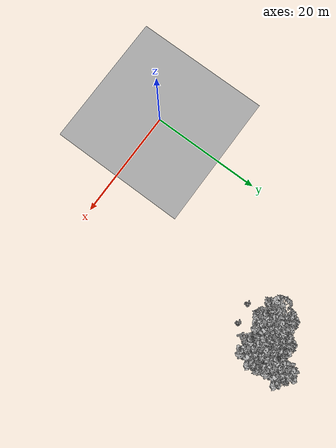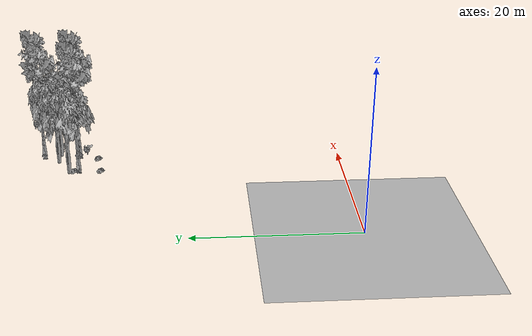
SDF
<sdf version="1.7">
 <world name="default">
  <model name="ground_plane">
   <static>1</static>
   <link name="link">
    <collision name="collision">
     <pose>-50 0 0 0 -0 0</pose>
     <geometry><plane><normal>0 0 1</normal><size>80 80</size></plane></geometry>
     <surface><contact><ode><min_depth>0.01</min_depth><max_vel>0</max_vel></ode></contact></surface>
    </collision>
    <visual name="grass">
     <cast_shadows>0</cast_shadows>
     <geometry>
      <mesh>
       <scale>0.46714285714285714 0.46714285714285714 0.1</scale>
       <uri>file://grass_plane/meshes/grass_plane.dae</uri>
      </mesh>
     </geometry>
    </visual>
   </link>
  </model>
  <model name="Tree 107">
   <static>1</static>
   <pose>19.491694746890296 36.49548050510151 0 1.57079 -0 0</pose>
   <link name="link">
    <collision name="collision">
     <geometry><mesh><scale>3.5 5 3.5</scale><uri>model://tree_2/meshes/tree_2.obj</uri></mesh></geometry>
    </collision>
    <visual name="visual">
     <geometry><mesh><scale>3.5 5 3.5</scale><uri>model://tree_2/meshes/tree_2.obj</uri></mesh></geometry>
    </visual>
   </link>
  </model>
  <model name="Tree 169">
   <static>1</static>
   <pose>18.00667214444364 33.86258297917094 0 1.57079 -0 0</pose>
   <link name="link">
    <collision name="collision">
     <geometry><mesh><scale>3.5 5 3.5</scale><uri>model://tree_9/meshes/tree_9.obj</uri></mesh></geometry>
    </collision>
    <visual name="visual">
     <geometry><mesh><scale>3.5 5 3.5</scale><uri>model://tree_9/meshes/tree_9.obj</uri></mesh></geometry>
    </visual>
   </link>
  </model>
  <model name="Tree 310">
   <static>1</static>
   <pose>22.30148808117653 34.10254442403618 0 1.57079 -0 0</pose>
   <link name="link">
    <collision name="collision">
     <geometry><mesh><scale>3.5 5 3.5</scale><uri>model://tree_9/meshes/tree_9.obj</uri></mesh></geometry>
    </collision>
    <visual name="visual">
     <geometry><mesh><scale>3.5 5 3.5</scale><uri>model://tree_9/meshes/tree_9.obj</uri></mesh></geometry>
    </visual>
   </link>
  </model>
  <model name="Tree 399">
   <static>1</static>
   <pose>16.483249399857925 34.903844147212794 0 1.57079 -0 0</pose>
   <link name="link">
    <collision name="collision">
     <geometry><mesh><scale>3.5 5 3.5</scale><uri>model://tree_2/meshes/tree_2.obj</uri></mesh></geometry>
    </collision>
    <visual name="visual">
     <geometry><mesh><scale>3.5 5 3.5</scale><uri>model://tree_2/meshes/tree_2.obj</uri></mesh></geometry>
    </visual>
   </link>
  </model>
  <model name="Tree 458">
   <static>1</static>
   <pose>21.482374147202158 36.38197607858588 0 1.57079 -0 0</pose>
   <link name="link">
    <collision name="collision">
     <geometry><mesh><scale>3.5 5 3.5</scale><uri>model://tree_2/meshes/tree_2.obj</uri></mesh></geometry>
    </collision>
    <visual name="visual">
     <geometry><mesh><scale>3.5 5 3.5</scale><uri>model://tree_2/meshes/tree_2.obj</uri></mesh></geometry>
    </visual>
   </link>
  </model>
  <model name="Tree 560">
   <static>1</static>
   <pose>22.35171626081099 38.730042616912186 0 1.57079 -0 0</pose>
   <link name="link">
    <collision name="collision">
     <geometry><mesh><scale>3.5 5 3.5</scale><uri>model://tree_9/meshes/tree_9.obj</uri></mesh></geometry>
    </collision>
    <visual name="visual">
     <geometry><mesh><scale>3.5 5 3.5</scale><uri>model://tree_9/meshes/tree_9.obj</uri></mesh></geometry>
    </visual>
   </link>
  </model>
  <model name="Bush 88">
   <static>1</static>
   <pose>21.439723713835747 34.12681241526434 0 1.57079 -0 0</pose>
   <link name="link">
    <collision name="collision">
     <geometry><mesh><scale>2 2 2</scale><uri>model://bush_2/meshes/bush_2.obj</uri></mesh></geometry>
     <surface><contact><collide_without_contact>false</collide_without_contact></contact></surface>
    </collision>
    <visual name="visual">
     <geometry><mesh><scale>2 2 2</scale><uri>model://bush_2/meshes/bush_2.obj</uri></mesh></geometry>
    </visual>
   </link>
  </model>
  <model name="Bush 105">
   <static>1</static>
   <pose>16.853585460021776 34.35268866904383 0 1.57079 -0 0</pose>
   <link name="link">
    <collision name="collision">
     <geometry><mesh><scale>2 2 2</scale><uri>model://bush_2/meshes/bush_2.obj</uri></mesh></geometry>
     <surface><contact><collide_without_contact>false</collide_without_contact></contact></surface>
    </collision>
    <visual name="visual">
     <geometry><mesh><scale>2 2 2</scale><uri>model://bush_2/meshes/bush_2.obj</uri></mesh></geometry>
    </visual>
   </link>
  </model>
  <model name="Bush 165">
   <static>1</static>
   <pose>16.761992166508065 30.957075324076754 0 1.57079 -0 0</pose>
   <link name="link">
    <collision name="collision">
     <geometry><mesh><scale>2 2 2</scale><uri>model://bush_2/meshes/bush_2.obj</uri></mesh></geometry>
     <surface><contact><collide_without_contact>false</collide_without_contact></contact></surface>
    </collision>
    <visual name="visual">
     <geometry><mesh><scale>2 2 2</scale><uri>model://bush_2/meshes/bush_2.obj</uri></mesh></geometry>
    </visual>
   </link>
  </model>
  <model name="Bush 406">
   <static>1</static>
   <pose>20.255779817058624 31.50072269745432 0 1.57079 -0 0</pose>
   <link name="link">
    <collision name="collision">
     <geometry><mesh><scale>2 2 2</scale><uri>model://bush_2/meshes/bush_2.obj</uri></mesh></geometry>
     <surface><contact><collide_without_contact>false</collide_without_contact></contact></surface>
    </collision>
    <visual name="visual">
     <geometry><mesh><scale>2 2 2</scale><uri>model://bush_2/meshes/bush_2.obj</uri></mesh></geometry>
    </visual>
   </link>
  </model>
  <model name="Bush 464">
   <static>1</static>
   <pose>21.793036932550237 33.06628096910855 0 1.57079 -0 0</pose>
   <link name="link">
    <collision name="collision">
     <geometry><mesh><scale>2 2 2</scale><uri>model://bush_0/meshes/bush_0.obj</uri></mesh></geometry>
     <surface><contact><collide_without_contact>false</collide_without_contact></contact></surface>
    </collision>
    <visual name="visual">
     <geometry><mesh><scale>2 2 2</scale><uri>model://bush_0/meshes/bush_0.obj</uri></mesh></geometry>
    </visual>
   </link>
  </model>
  <model name="Bush 487">
   <static>1</static>
   <pose>22.57307923690555 36.364172280236005 0 1.57079 -0 0</pose>
   <link name="link">
    <collision name="collision">
     <geometry><mesh><scale>2 2 2</scale><uri>model://bush_4/meshes/bush_4.obj</uri></mesh></geometry>
     <surface><contact><collide_without_contact>false</collide_without_contact></contact></surface>
    </collision>
    <visual name="visual">
     <geometry><mesh><scale>2 2 2</scale><uri>model://bush_4/meshes/bush_4.obj</uri></mesh></geometry>
    </visual>
   </link>
  </model>
 </world>
</sdf>
